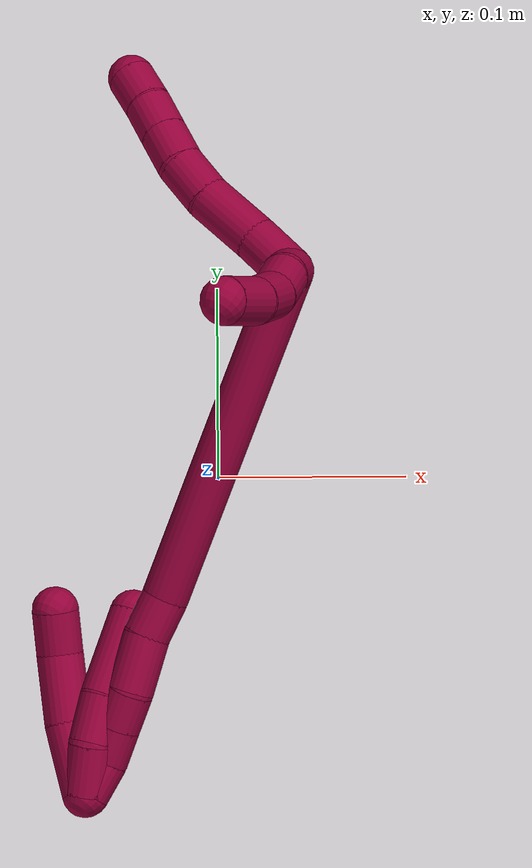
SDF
<sdf version="1.7">
 <world name="default">
  <model name="photoneo_s_sensor">
   <static>1</static>
   <pose>0 0 2 1.57079 1.57079 3.14159</pose>
   <link name="link">
    <inertial><mass>0.1</mass></inertial>
    <sensor name="sensor" type="depth">
     <update_rate>30</update_rate>
     <camera>
      <horizontal_fov>1.22</horizontal_fov>
      <image><width>1920</width><height>1200</height><format>B8G8R8</format></image>
      <clip><near>0.1</near><far>4</far></clip>
      <depth_camera><output>points</output></depth_camera>
     </camera>
     <plugin name="camera_plugin" filename="libgazebo_ros_depth_camera.so">
      <baseline>0.2</baseline>
      <alwaysOn>1</alwaysOn>
      <updateRate>0.0</updateRate>
      <cameraName>camera_ir</cameraName>
      <imageTopicName>/camera/color/image_raw</imageTopicName>
      <cameraInfoTopicName>/camera/color/camera_info</cameraInfoTopicName>
      <depthImageTopicName>/camera/depth/image_raw</depthImageTopicName>
      <depthImageCameraInfoTopicName>/camera/depth/camera_info</depthImageCameraInfoTopicName>
      <pointCloudTopicName>/camera/depth/points</pointCloudTopicName>
      <frameName>fr_optical</frameName>
      <pointCloudCutoff>0.1</pointCloudCutoff>
      <pointCloudCutoffMax>2.0</pointCloudCutoffMax>
      <distortionK1>0</distortionK1>
      <distortionK2>0</distortionK2>
      <distortionK3>0</distortionK3>
      <distortionT1>0</distortionT1>
      <distortionT2>0</distortionT2>
      <CxPrime>0</CxPrime>
      <Cx>0</Cx>
      <Cy>0</Cy>
      <focalLength>0</focalLength>
      <hackBaseline>0</hackBaseline>
     </plugin>
    </sensor>
   </link>
  </model>
  <model name="bin">
   <static>1</static>
   <link name="bottom">
    <collision name="collision-bottom">
     <pose>0 0 -0.01 0 -0 0</pose>
     <geometry><box><size>0.8 0.6 0.02</size></box></geometry>
     <surface>
      <friction><ode><mu>100</mu><mu2>100</mu2></ode></friction>
      <contact><collide_bitmask>65535</collide_bitmask></contact>
     </surface>
    </collision>
   </link>
   <link name="west_wall">
    <collision name="collision-west_wall">
     <pose>-0.41 0 0.1 0 -0 0</pose>
     <geometry><box><size>0.02 0.6 0.2</size></box></geometry>
     <surface>
      <friction><ode><mu>100</mu><mu2>100</mu2></ode></friction>
      <contact><collide_bitmask>65535</collide_bitmask></contact>
     </surface>
    </collision>
   </link>
   <link name="east_wall">
    <collision name="collision-east_wall">
     <pose>0.41 0 0.1 0 -0 0</pose>
     <geometry><box><size>0.02 0.6 0.2</size></box></geometry>
     <surface>
      <friction><ode><mu>100</mu><mu2>100</mu2></ode></friction>
      <contact><collide_bitmask>65535</collide_bitmask></contact>
     </surface>
    </collision>
   </link>
   <link name="south_wall">
    <collision name="collision-south_wall">
     <pose>0 -0.31 0.1 0 -0 0</pose>
     <geometry><box><size>0.8 0.02 0.2</size></box></geometry>
     <surface>
      <friction><ode><mu>100</mu><mu2>100</mu2></ode></friction>
      <contact><collide_bitmask>65535</collide_bitmask></contact>
     </surface>
    </collision>
   </link>
   <link name="north_wall">
    <collision name="collision-north_wall">
     <pose>0 0.31 0.1 0 -0 0</pose>
     <geometry><box><size>0.8 0.02 0.2</size></box></geometry>
     <surface>
      <friction><ode><mu>100</mu><mu2>100</mu2></ode></friction>
      <contact><collide_bitmask>65535</collide_bitmask></contact>
     </surface>
    </collision>
   </link>
  </model>
  <model name="8">
   <static>0</static>
   <link name="8">
    <collision name="collision-cylinder-e_1_2_8">
     <pose>-0.000468 0.012785 -0.004878 -1.93528 -0.034212 0.049666</pose>
     <geometry><cylinder><radius>0.0125</radius><length>0.027383</length></cylinder></geometry>
     <surface>
      <friction><ode><mu>1.16</mu><mu2>1.16</mu2><slip1>0</slip1><slip2>0</slip2></ode></friction>
      <contact><ode><kp>1e+06</kp><kd>1</kd><max_vel>0</max_vel><min_depth>0.001</min_depth></ode></contact>
     </surface>
    </collision>
    <visual name="visual-cylinder-e_1_2_8">
     <pose>-0.000468 0.012785 -0.004878 -1.93528 -0.034212 0.049666</pose>
     <geometry><cylinder><radius>0.0125</radius><length>0.027383</length></cylinder></geometry>
     <material><ambient>0.584314 0 0.227451 1</ambient></material>
    </visual>
    <collision name="collision-cylinder-e_2_8_9">
     <pose>0.000155 0.042651 -0.014839 -1.86006 0.061153 -0.081984</pose>
     <geometry><cylinder><radius>0.0125</radius><length>0.035711</length></cylinder></geometry>
     <surface>
      <friction><ode><mu>1.16</mu><mu2>1.16</mu2><slip1>0</slip1><slip2>0</slip2></ode></friction>
      <contact><ode><kp>1e+06</kp><kd>1</kd><max_vel>0</max_vel><min_depth>0.001</min_depth></ode></contact>
     </surface>
    </collision>
    <visual name="visual-cylinder-e_2_8_9">
     <pose>0.000155 0.042651 -0.014839 -1.86006 0.061153 -0.081984</pose>
     <geometry><cylinder><radius>0.0125</radius><length>0.035711</length></cylinder></geometry>
     <material><ambient>0.584314 0 0.227451 1</ambient></material>
    </visual>
    <collision name="collision-cylinder-e_3_9_10">
     <pose>0.002298 0.070681 -0.025123 -2.0142 0.086561 -0.136812</pose>
     <geometry><cylinder><radius>0.0125</radius><length>0.024332</length></cylinder></geometry>
     <surface>
      <friction><ode><mu>1.16</mu><mu2>1.16</mu2><slip1>0</slip1><slip2>0</slip2></ode></friction>
      <contact><ode><kp>1e+06</kp><kd>1</kd><max_vel>0</max_vel><min_depth>0.001</min_depth></ode></contact>
     </surface>
    </collision>
    <visual name="visual-cylinder-e_3_9_10">
     <pose>0.002298 0.070681 -0.025123 -2.0142 0.086561 -0.136812</pose>
     <geometry><cylinder><radius>0.0125</radius><length>0.024332</length></cylinder></geometry>
     <material><ambient>0.584314 0 0.227451 1</ambient></material>
    </visual>
    <collision name="collision-cylinder-e_4_10_11">
     <pose>0.00348 0.090267 -0.036682 -2.20539 0.01221 -0.024149</pose>
     <geometry><cylinder><radius>0.0125</radius><length>0.021454</length></cylinder></geometry>
     <surface>
      <friction><ode><mu>1.16</mu><mu2>1.16</mu2><slip1>0</slip1><slip2>0</slip2></ode></friction>
      <contact><ode><kp>1e+06</kp><kd>1</kd><max_vel>0</max_vel><min_depth>0.001</min_depth></ode></contact>
     </surface>
    </collision>
    <visual name="visual-cylinder-e_4_10_11">
     <pose>0.00348 0.090267 -0.036682 -2.20539 0.01221 -0.024149</pose>
     <geometry><cylinder><radius>0.0125</radius><length>0.021454</length></cylinder></geometry>
     <material><ambient>0.584314 0 0.227451 1</ambient></material>
    </visual>
    <collision name="collision-cylinder-e_5_11_12">
     <pose>0.003805 0.107047 -0.04911 -2.21133 0.019045 -0.037947</pose>
     <geometry><cylinder><radius>0.0125</radius><length>0.020314</length></cylinder></geometry>
     <surface>
      <friction><ode><mu>1.16</mu><mu2>1.16</mu2><slip1>0</slip1><slip2>0</slip2></ode></friction>
      <contact><ode><kp>1e+06</kp><kd>1</kd><max_vel>0</max_vel><min_depth>0.001</min_depth></ode></contact>
     </surface>
    </collision>
    <visual name="visual-cylinder-e_5_11_12">
     <pose>0.003805 0.107047 -0.04911 -2.21133 0.019045 -0.037947</pose>
     <geometry><cylinder><radius>0.0125</radius><length>0.020314</length></cylinder></geometry>
     <material><ambient>0.584314 0 0.227451 1</ambient></material>
    </visual>
    <collision name="collision-cylinder-e_6_12_6">
     <pose>0.003253 0.123735 -0.061065 -2.17398 -0.071668 0.136237</pose>
     <geometry><cylinder><radius>0.0125</radius><length>0.020806</length></cylinder></geometry>
     <surface>
      <friction><ode><mu>1.16</mu><mu2>1.16</mu2><slip1>0</slip1><slip2>0</slip2></ode></friction>
      <contact><ode><kp>1e+06</kp><kd>1</kd><max_vel>0</max_vel><min_depth>0.001</min_depth></ode></contact>
     </surface>
    </collision>
    <visual name="visual-cylinder-e_6_12_6">
     <pose>0.003253 0.123735 -0.061065 -2.17398 -0.071668 0.136237</pose>
     <geometry><cylinder><radius>0.0125</radius><length>0.020806</length></cylinder></geometry>
     <material><ambient>0.584314 0 0.227451 1</ambient></material>
    </visual>
    <collision name="collision-cylinder-e_1_2_13">
     <pose>0.008085 -0.002313 0.006305 0.351572 0.877668 0.166349</pose>
     <geometry><cylinder><radius>0.0125</radius><length>0.02102</length></cylinder></geometry>
     <surface>
      <friction><ode><mu>1.16</mu><mu2>1.16</mu2><slip1>0</slip1><slip2>0</slip2></ode></friction>
      <contact><ode><kp>1e+06</kp><kd>1</kd><max_vel>0</max_vel><min_depth>0.001</min_depth></ode></contact>
     </surface>
    </collision>
    <visual name="visual-cylinder-e_1_2_13">
     <pose>0.008085 -0.002313 0.006305 0.351572 0.877668 0.166349</pose>
     <geometry><cylinder><radius>0.0125</radius><length>0.02102</length></cylinder></geometry>
     <material><ambient>0.584314 0 0.227451 1</ambient></material>
    </visual>
    <collision name="collision-cylinder-e_2_13_14">
     <pose>0.023108 -0.007142 0.022256 0.255211 0.608016 0.080462</pose>
     <geometry><cylinder><radius>0.0125</radius><length>0.024293</length></cylinder></geometry>
     <surface>
      <friction><ode><mu>1.16</mu><mu2>1.16</mu2><slip1>0</slip1><slip2>0</slip2></ode></friction>
      <contact><ode><kp>1e+06</kp><kd>1</kd><max_vel>0</max_vel><min_depth>0.001</min_depth></ode></contact>
     </surface>
    </collision>
    <visual name="visual-cylinder-e_2_13_14">
     <pose>0.023108 -0.007142 0.022256 0.255211 0.608016 0.080462</pose>
     <geometry><cylinder><radius>0.0125</radius><length>0.024293</length></cylinder></geometry>
     <material><ambient>0.584314 0 0.227451 1</ambient></material>
    </visual>
    <collision name="collision-cylinder-e_3_14_15">
     <pose>0.038995 -0.009808 0.039909 0.018693 0.840827 0.008357</pose>
     <geometry><cylinder><radius>0.0125</radius><length>0.024016</length></cylinder></geometry>
     <surface>
      <friction><ode><mu>1.16</mu><mu2>1.16</mu2><slip1>0</slip1><slip2>0</slip2></ode></friction>
      <contact><ode><kp>1e+06</kp><kd>1</kd><max_vel>0</max_vel><min_depth>0.001</min_depth></ode></contact>
     </surface>
    </collision>
    <visual name="visual-cylinder-e_3_14_15">
     <pose>0.038995 -0.009808 0.039909 0.018693 0.840827 0.008357</pose>
     <geometry><cylinder><radius>0.0125</radius><length>0.024016</length></cylinder></geometry>
     <material><ambient>0.584314 0 0.227451 1</ambient></material>
    </visual>
    <collision name="collision-cylinder-e_4_15_5">
     <pose>0.059899 -0.007521 0.057205 -0.256524 0.894039 -0.123495</pose>
     <geometry><cylinder><radius>0.0125</radius><length>0.030671</length></cylinder></geometry>
     <surface>
      <friction><ode><mu>1.16</mu><mu2>1.16</mu2><slip1>0</slip1><slip2>0</slip2></ode></friction>
      <contact><ode><kp>1e+06</kp><kd>1</kd><max_vel>0</max_vel><min_depth>0.001</min_depth></ode></contact>
     </surface>
    </collision>
    <visual name="visual-cylinder-e_4_15_5">
     <pose>0.059899 -0.007521 0.057205 -0.256524 0.894039 -0.123495</pose>
     <geometry><cylinder><radius>0.0125</radius><length>0.030671</length></cylinder></geometry>
     <material><ambient>0.584314 0 0.227451 1</ambient></material>
    </visual>
    <collision name="collision-cylinder-e_1_2_16">
     <pose>-0.057709 0.002044 0.073375 -0.027847 -0.666261 0.009636</pose>
     <geometry><cylinder><radius>0.0125</radius><length>0.186744</length></cylinder></geometry>
     <surface>
      <friction><ode><mu>1.16</mu><mu2>1.16</mu2><slip1>0</slip1><slip2>0</slip2></ode></friction>
      <contact><ode><kp>1e+06</kp><kd>1</kd><max_vel>0</max_vel><min_depth>0.001</min_depth></ode></contact>
     </surface>
    </collision>
    <visual name="visual-cylinder-e_1_2_16">
     <pose>-0.057709 0.002044 0.073375 -0.027847 -0.666261 0.009636</pose>
     <geometry><cylinder><radius>0.0125</radius><length>0.186744</length></cylinder></geometry>
     <material><ambient>0.584314 0 0.227451 1</ambient></material>
    </visual>
    <collision name="collision-cylinder-e_2_16_17">
     <pose>-0.12068 0.004672 0.156692 -0.058695 -0.48615 0.014559</pose>
     <geometry><cylinder><radius>0.0125</radius><length>0.022528</length></cylinder></geometry>
     <surface>
      <friction><ode><mu>1.16</mu><mu2>1.16</mu2><slip1>0</slip1><slip2>0</slip2></ode></friction>
      <contact><ode><kp>1e+06</kp><kd>1</kd><max_vel>0</max_vel><min_depth>0.001</min_depth></ode></contact>
     </surface>
    </collision>
    <visual name="visual-cylinder-e_2_16_17">
     <pose>-0.12068 0.004672 0.156692 -0.058695 -0.48615 0.014559</pose>
     <geometry><cylinder><radius>0.0125</radius><length>0.022528</length></cylinder></geometry>
     <material><ambient>0.584314 0 0.227451 1</ambient></material>
    </visual>
    <collision name="collision-cylinder-e_3_17_18">
     <pose>-0.13297 0.003455 0.180133 0.132643 -0.476309 -0.032245</pose>
     <geometry><cylinder><radius>0.0125</radius><length>0.030649</length></cylinder></geometry>
     <surface>
      <friction><ode><mu>1.16</mu><mu2>1.16</mu2><slip1>0</slip1><slip2>0</slip2></ode></friction>
      <contact><ode><kp>1e+06</kp><kd>1</kd><max_vel>0</max_vel><min_depth>0.001</min_depth></ode></contact>
     </surface>
    </collision>
    <visual name="visual-cylinder-e_3_17_18">
     <pose>-0.13297 0.003455 0.180133 0.132643 -0.476309 -0.032245</pose>
     <geometry><cylinder><radius>0.0125</radius><length>0.030649</length></cylinder></geometry>
     <material><ambient>0.584314 0 0.227451 1</ambient></material>
    </visual>
    <collision name="collision-cylinder-e_4_18_19">
     <pose>-0.145854 0.001677 0.201757 -0.002906 -0.624683 0.000938</pose>
     <geometry><cylinder><radius>0.0125</radius><length>0.020033</length></cylinder></geometry>
     <surface>
      <friction><ode><mu>1.16</mu><mu2>1.16</mu2><slip1>0</slip1><slip2>0</slip2></ode></friction>
      <contact><ode><kp>1e+06</kp><kd>1</kd><max_vel>0</max_vel><min_depth>0.001</min_depth></ode></contact>
     </surface>
    </collision>
    <visual name="visual-cylinder-e_4_18_19">
     <pose>-0.145854 0.001677 0.201757 -0.002906 -0.624683 0.000938</pose>
     <geometry><cylinder><radius>0.0125</radius><length>0.020033</length></cylinder></geometry>
     <material><ambient>0.584314 0 0.227451 1</ambient></material>
    </visual>
    <collision name="collision-cylinder-e_5_19_20">
     <pose>-0.157536 0.001598 0.218016 0.012616 -0.621349 -0.004051</pose>
     <geometry><cylinder><radius>0.0125</radius><length>0.020009</length></cylinder></geometry>
     <surface>
      <friction><ode><mu>1.16</mu><mu2>1.16</mu2><slip1>0</slip1><slip2>0</slip2></ode></friction>
      <contact><ode><kp>1e+06</kp><kd>1</kd><max_vel>0</max_vel><min_depth>0.001</min_depth></ode></contact>
     </surface>
    </collision>
    <visual name="visual-cylinder-e_5_19_20">
     <pose>-0.157536 0.001598 0.218016 0.012616 -0.621349 -0.004051</pose>
     <geometry><cylinder><radius>0.0125</radius><length>0.020009</length></cylinder></geometry>
     <material><ambient>0.584314 0 0.227451 1</ambient></material>
    </visual>
    <collision name="collision-cylinder-e_6_20_1">
     <pose>-0.166417 0.002141 0.235669 -0.067645 -0.310034 0.010575</pose>
     <geometry><cylinder><radius>0.0125</radius><length>0.020036</length></cylinder></geometry>
     <surface>
      <friction><ode><mu>1.16</mu><mu2>1.16</mu2><slip1>0</slip1><slip2>0</slip2></ode></friction>
      <contact><ode><kp>1e+06</kp><kd>1</kd><max_vel>0</max_vel><min_depth>0.001</min_depth></ode></contact>
     </surface>
    </collision>
    <visual name="visual-cylinder-e_6_20_1">
     <pose>-0.166417 0.002141 0.235669 -0.067645 -0.310034 0.010575</pose>
     <geometry><cylinder><radius>0.0125</radius><length>0.020036</length></cylinder></geometry>
     <material><ambient>0.584314 0 0.227451 1</ambient></material>
    </visual>
    <collision name="collision-cylinder-e_1_1_21">
     <pose>-0.164516 0.015262 0.23159 -2.39912 0.262416 -0.653672</pose>
     <geometry><cylinder><radius>0.0125</radius><length>0.038216</length></cylinder></geometry>
     <surface>
      <friction><ode><mu>1.16</mu><mu2>1.16</mu2><slip1>0</slip1><slip2>0</slip2></ode></friction>
      <contact><ode><kp>1e+06</kp><kd>1</kd><max_vel>0</max_vel><min_depth>0.001</min_depth></ode></contact>
     </surface>
    </collision>
    <visual name="visual-cylinder-e_1_1_21">
     <pose>-0.164516 0.015262 0.23159 -2.39912 0.262416 -0.653672</pose>
     <geometry><cylinder><radius>0.0125</radius><length>0.038216</length></cylinder></geometry>
     <material><ambient>0.584314 0 0.227451 1</ambient></material>
    </visual>
    <collision name="collision-cylinder-e_2_21_22">
     <pose>-0.152117 0.037645 0.203636 -2.53765 0.403265 -1.16147</pose>
     <geometry><cylinder><radius>0.0125</radius><length>0.037929</length></cylinder></geometry>
     <surface>
      <friction><ode><mu>1.16</mu><mu2>1.16</mu2><slip1>0</slip1><slip2>0</slip2></ode></friction>
      <contact><ode><kp>1e+06</kp><kd>1</kd><max_vel>0</max_vel><min_depth>0.001</min_depth></ode></contact>
     </surface>
    </collision>
    <visual name="visual-cylinder-e_2_21_22">
     <pose>-0.152117 0.037645 0.203636 -2.53765 0.403265 -1.16147</pose>
     <geometry><cylinder><radius>0.0125</radius><length>0.037929</length></cylinder></geometry>
     <material><ambient>0.584314 0 0.227451 1</ambient></material>
    </visual>
    <collision name="collision-cylinder-e_3_22_4">
     <pose>-0.137165 0.052519 0.181456 -2.57575 0.681125 -1.7675</pose>
     <geometry><cylinder><radius>0.0125</radius><length>0.023855</length></cylinder></geometry>
     <surface>
      <friction><ode><mu>1.16</mu><mu2>1.16</mu2><slip1>0</slip1><slip2>0</slip2></ode></friction>
      <contact><ode><kp>1e+06</kp><kd>1</kd><max_vel>0</max_vel><min_depth>0.001</min_depth></ode></contact>
     </surface>
    </collision>
    <visual name="visual-cylinder-e_3_22_4">
     <pose>-0.137165 0.052519 0.181456 -2.57575 0.681125 -1.7675</pose>
     <geometry><cylinder><radius>0.0125</radius><length>0.023855</length></cylinder></geometry>
     <material><ambient>0.584314 0 0.227451 1</ambient></material>
    </visual>
    <collision name="collision-cylinder-e_1_1_23">
     <pose>-0.161671 0.005949 0.23478 -2.84649 0.622201 -2.27562</pose>
     <geometry><cylinder><radius>0.0125</radius><length>0.026772</length></cylinder></geometry>
     <surface>
      <friction><ode><mu>1.16</mu><mu2>1.16</mu2><slip1>0</slip1><slip2>0</slip2></ode></friction>
      <contact><ode><kp>1e+06</kp><kd>1</kd><max_vel>0</max_vel><min_depth>0.001</min_depth></ode></contact>
     </surface>
    </collision>
    <visual name="visual-cylinder-e_1_1_23">
     <pose>-0.161671 0.005949 0.23478 -2.84649 0.622201 -2.27562</pose>
     <geometry><cylinder><radius>0.0125</radius><length>0.026772</length></cylinder></geometry>
     <material><ambient>0.584314 0 0.227451 1</ambient></material>
    </visual>
    <collision name="collision-cylinder-e_2_23_24">
     <pose>-0.149441 0.011719 0.21252 -2.9251 0.349905 -2.03915</pose>
     <geometry><cylinder><radius>0.0125</radius><length>0.025839</length></cylinder></geometry>
     <surface>
      <friction><ode><mu>1.16</mu><mu2>1.16</mu2><slip1>0</slip1><slip2>0</slip2></ode></friction>
      <contact><ode><kp>1e+06</kp><kd>1</kd><max_vel>0</max_vel><min_depth>0.001</min_depth></ode></contact>
     </surface>
    </collision>
    <visual name="visual-cylinder-e_2_23_24">
     <pose>-0.149441 0.011719 0.21252 -2.9251 0.349905 -2.03915</pose>
     <geometry><cylinder><radius>0.0125</radius><length>0.025839</length></cylinder></geometry>
     <material><ambient>0.584314 0 0.227451 1</ambient></material>
    </visual>
    <collision name="collision-cylinder-e_3_24_3">
     <pose>-0.139246 0.017573 0.177914 -2.99987 0.245838 -2.0986</pose>
     <geometry><cylinder><radius>0.0125</radius><length>0.04739</length></cylinder></geometry>
     <surface>
      <friction><ode><mu>1.16</mu><mu2>1.16</mu2><slip1>0</slip1><slip2>0</slip2></ode></friction>
      <contact><ode><kp>1e+06</kp><kd>1</kd><max_vel>0</max_vel><min_depth>0.001</min_depth></ode></contact>
     </surface>
    </collision>
    <visual name="visual-cylinder-e_3_24_3">
     <pose>-0.139246 0.017573 0.177914 -2.99987 0.245838 -2.0986</pose>
     <geometry><cylinder><radius>0.0125</radius><length>0.04739</length></cylinder></geometry>
     <material><ambient>0.584314 0 0.227451 1</ambient></material>
    </visual>
    <collision name="collision-sphere-3">
     <pose>-0.133479 0.020819 0.155162 0 -0 0</pose>
     <geometry><sphere><radius>0.0125</radius></sphere></geometry>
     <surface>
      <friction><ode><mu>1.16</mu><mu2>1.16</mu2><slip1>0</slip1><slip2>0</slip2></ode></friction>
      <contact><ode><kp>1e+06</kp><kd>1</kd><max_vel>0</max_vel><min_depth>0.001</min_depth></ode></contact>
     </surface>
    </collision>
    <visual name="visual-sphere-3">
     <pose>-0.133479 0.020819 0.155162 0 -0 0</pose>
     <geometry><sphere><radius>0.0125</radius></sphere></geometry>
     <material><ambient>0.584314 0 0.227451 1</ambient></material>
    </visual>
    <collision name="collision-sphere-24">
     <pose>-0.145012 0.014326 0.200666 0 -0 0</pose>
     <geometry><sphere><radius>0.0125</radius></sphere></geometry>
     <surface>
      <friction><ode><mu>1.16</mu><mu2>1.16</mu2><slip1>0</slip1><slip2>0</slip2></ode></friction>
      <contact><ode><kp>1e+06</kp><kd>1</kd><max_vel>0</max_vel><min_depth>0.001</min_depth></ode></contact>
     </surface>
    </collision>
    <visual name="visual-sphere-24">
     <pose>-0.145012 0.014326 0.200666 0 -0 0</pose>
     <geometry><sphere><radius>0.0125</radius></sphere></geometry>
     <material><ambient>0.584314 0 0.227451 1</ambient></material>
    </visual>
    <collision name="collision-sphere-23">
     <pose>-0.15387 0.009112 0.224373 0 -0 0</pose>
     <geometry><sphere><radius>0.0125</radius></sphere></geometry>
     <surface>
      <friction><ode><mu>1.16</mu><mu2>1.16</mu2><slip1>0</slip1><slip2>0</slip2></ode></friction>
      <contact><ode><kp>1e+06</kp><kd>1</kd><max_vel>0</max_vel><min_depth>0.001</min_depth></ode></contact>
     </surface>
    </collision>
    <visual name="visual-sphere-23">
     <pose>-0.15387 0.009112 0.224373 0 -0 0</pose>
     <geometry><sphere><radius>0.0125</radius></sphere></geometry>
     <material><ambient>0.584314 0 0.227451 1</ambient></material>
    </visual>
    <collision name="collision-sphere-4">
     <pose>-0.129654 0.057487 0.173635 0 -0 0</pose>
     <geometry><sphere><radius>0.0125</radius></sphere></geometry>
     <surface>
      <friction><ode><mu>1.16</mu><mu2>1.16</mu2><slip1>0</slip1><slip2>0</slip2></ode></friction>
      <contact><ode><kp>1e+06</kp><kd>1</kd><max_vel>0</max_vel><min_depth>0.001</min_depth></ode></contact>
     </surface>
    </collision>
    <visual name="visual-sphere-4">
     <pose>-0.129654 0.057487 0.173635 0 -0 0</pose>
     <geometry><sphere><radius>0.0125</radius></sphere></geometry>
     <material><ambient>0.584314 0 0.227451 1</ambient></material>
    </visual>
    <collision name="collision-sphere-22">
     <pose>-0.144675 0.047551 0.189278 0 -0 0</pose>
     <geometry><sphere><radius>0.0125</radius></sphere></geometry>
     <surface>
      <friction><ode><mu>1.16</mu><mu2>1.16</mu2><slip1>0</slip1><slip2>0</slip2></ode></friction>
      <contact><ode><kp>1e+06</kp><kd>1</kd><max_vel>0</max_vel><min_depth>0.001</min_depth></ode></contact>
     </surface>
    </collision>
    <visual name="visual-sphere-22">
     <pose>-0.144675 0.047551 0.189278 0 -0 0</pose>
     <geometry><sphere><radius>0.0125</radius></sphere></geometry>
     <material><ambient>0.584314 0 0.227451 1</ambient></material>
    </visual>
    <collision name="collision-sphere-21">
     <pose>-0.159559 0.02774 0.217993 0 -0 0</pose>
     <geometry><sphere><radius>0.0125</radius></sphere></geometry>
     <surface>
      <friction><ode><mu>1.16</mu><mu2>1.16</mu2><slip1>0</slip1><slip2>0</slip2></ode></friction>
      <contact><ode><kp>1e+06</kp><kd>1</kd><max_vel>0</max_vel><min_depth>0.001</min_depth></ode></contact>
     </surface>
    </collision>
    <visual name="visual-sphere-21">
     <pose>-0.159559 0.02774 0.217993 0 -0 0</pose>
     <geometry><sphere><radius>0.0125</radius></sphere></geometry>
     <material><ambient>0.584314 0 0.227451 1</ambient></material>
    </visual>
    <collision name="collision-sphere-1">
     <pose>-0.169473 0.002785 0.245187 0 -0 0</pose>
     <geometry><sphere><radius>0.0125</radius></sphere></geometry>
     <surface>
      <friction><ode><mu>1.16</mu><mu2>1.16</mu2><slip1>0</slip1><slip2>0</slip2></ode></friction>
      <contact><ode><kp>1e+06</kp><kd>1</kd><max_vel>0</max_vel><min_depth>0.001</min_depth></ode></contact>
     </surface>
    </collision>
    <visual name="visual-sphere-1">
     <pose>-0.169473 0.002785 0.245187 0 -0 0</pose>
     <geometry><sphere><radius>0.0125</radius></sphere></geometry>
     <material><ambient>0.584314 0 0.227451 1</ambient></material>
    </visual>
    <collision name="collision-sphere-12">
     <pose>0.003998 0.11519 -0.055179 0 -0 0</pose>
     <geometry><sphere><radius>0.0125</radius></sphere></geometry>
     <surface>
      <friction><ode><mu>1.16</mu><mu2>1.16</mu2><slip1>0</slip1><slip2>0</slip2></ode></friction>
      <contact><ode><kp>1e+06</kp><kd>1</kd><max_vel>0</max_vel><min_depth>0.001</min_depth></ode></contact>
     </surface>
    </collision>
    <visual name="visual-sphere-12">
     <pose>0.003998 0.11519 -0.055179 0 -0 0</pose>
     <geometry><sphere><radius>0.0125</radius></sphere></geometry>
     <material><ambient>0.584314 0 0.227451 1</ambient></material>
    </visual>
    <collision name="collision-sphere-11">
     <pose>0.003611 0.098905 -0.043041 0 -0 0</pose>
     <geometry><sphere><radius>0.0125</radius></sphere></geometry>
     <surface>
      <friction><ode><mu>1.16</mu><mu2>1.16</mu2><slip1>0</slip1><slip2>0</slip2></ode></friction>
      <contact><ode><kp>1e+06</kp><kd>1</kd><max_vel>0</max_vel><min_depth>0.001</min_depth></ode></contact>
     </surface>
    </collision>
    <visual name="visual-sphere-11">
     <pose>0.003611 0.098905 -0.043041 0 -0 0</pose>
     <geometry><sphere><radius>0.0125</radius></sphere></geometry>
     <material><ambient>0.584314 0 0.227451 1</ambient></material>
    </visual>
    <collision name="collision-sphere-10">
     <pose>0.003349 0.081629 -0.030323 0 -0 0</pose>
     <geometry><sphere><radius>0.0125</radius></sphere></geometry>
     <surface>
      <friction><ode><mu>1.16</mu><mu2>1.16</mu2><slip1>0</slip1><slip2>0</slip2></ode></friction>
      <contact><ode><kp>1e+06</kp><kd>1</kd><max_vel>0</max_vel><min_depth>0.001</min_depth></ode></contact>
     </surface>
    </collision>
    <visual name="visual-sphere-10">
     <pose>0.003349 0.081629 -0.030323 0 -0 0</pose>
     <geometry><sphere><radius>0.0125</radius></sphere></geometry>
     <material><ambient>0.584314 0 0.227451 1</ambient></material>
    </visual>
    <collision name="collision-sphere-9">
     <pose>0.001246 0.059732 -0.019923 0 -0 0</pose>
     <geometry><sphere><radius>0.0125</radius></sphere></geometry>
     <surface>
      <friction><ode><mu>1.16</mu><mu2>1.16</mu2><slip1>0</slip1><slip2>0</slip2></ode></friction>
      <contact><ode><kp>1e+06</kp><kd>1</kd><max_vel>0</max_vel><min_depth>0.001</min_depth></ode></contact>
     </surface>
    </collision>
    <visual name="visual-sphere-9">
     <pose>0.001246 0.059732 -0.019923 0 -0 0</pose>
     <geometry><sphere><radius>0.0125</radius></sphere></geometry>
     <material><ambient>0.584314 0 0.227451 1</ambient></material>
    </visual>
    <collision name="collision-sphere-2">
     <geometry><sphere><radius>0.0125</radius></sphere></geometry>
     <surface>
      <friction><ode><mu>1.16</mu><mu2>1.16</mu2><slip1>0</slip1><slip2>0</slip2></ode></friction>
      <contact><ode><kp>1e+06</kp><kd>1</kd><max_vel>0</max_vel><min_depth>0.001</min_depth></ode></contact>
     </surface>
    </collision>
    <visual name="visual-sphere-2">
     <geometry><sphere><radius>0.0125</radius></sphere></geometry>
     <material><ambient>0.584314 0 0.227451 1</ambient></material>
    </visual>
    <collision name="collision-sphere-19">
     <pose>-0.151712 0.001701 0.209882 0 -0 0</pose>
     <geometry><sphere><radius>0.0125</radius></sphere></geometry>
     <surface>
      <friction><ode><mu>1.16</mu><mu2>1.16</mu2><slip1>0</slip1><slip2>0</slip2></ode></friction>
      <contact><ode><kp>1e+06</kp><kd>1</kd><max_vel>0</max_vel><min_depth>0.001</min_depth></ode></contact>
     </surface>
    </collision>
    <visual name="visual-sphere-19">
     <pose>-0.151712 0.001701 0.209882 0 -0 0</pose>
     <geometry><sphere><radius>0.0125</radius></sphere></geometry>
     <material><ambient>0.584314 0 0.227451 1</ambient></material>
    </visual>
    <collision name="collision-sphere-8">
     <pose>-0.000937 0.025569 -0.009756 0 -0 0</pose>
     <geometry><sphere><radius>0.0125</radius></sphere></geometry>
     <surface>
      <friction><ode><mu>1.16</mu><mu2>1.16</mu2><slip1>0</slip1><slip2>0</slip2></ode></friction>
      <contact><ode><kp>1e+06</kp><kd>1</kd><max_vel>0</max_vel><min_depth>0.001</min_depth></ode></contact>
     </surface>
    </collision>
    <visual name="visual-sphere-8">
     <pose>-0.000937 0.025569 -0.009756 0 -0 0</pose>
     <geometry><sphere><radius>0.0125</radius></sphere></geometry>
     <material><ambient>0.584314 0 0.227451 1</ambient></material>
    </visual>
    <collision name="collision-sphere-6">
     <pose>0.002508 0.13228 -0.066951 0 -0 0</pose>
     <geometry><sphere><radius>0.0125</radius></sphere></geometry>
     <surface>
      <friction><ode><mu>1.16</mu><mu2>1.16</mu2><slip1>0</slip1><slip2>0</slip2></ode></friction>
      <contact><ode><kp>1e+06</kp><kd>1</kd><max_vel>0</max_vel><min_depth>0.001</min_depth></ode></contact>
     </surface>
    </collision>
    <visual name="visual-sphere-6">
     <pose>0.002508 0.13228 -0.066951 0 -0 0</pose>
     <geometry><sphere><radius>0.0125</radius></sphere></geometry>
     <material><ambient>0.584314 0 0.227451 1</ambient></material>
    </visual>
    <collision name="collision-sphere-13">
     <pose>0.01617 -0.004625 0.012609 0 -0 0</pose>
     <geometry><sphere><radius>0.0125</radius></sphere></geometry>
     <surface>
      <friction><ode><mu>1.16</mu><mu2>1.16</mu2><slip1>0</slip1><slip2>0</slip2></ode></friction>
      <contact><ode><kp>1e+06</kp><kd>1</kd><max_vel>0</max_vel><min_depth>0.001</min_depth></ode></contact>
     </surface>
    </collision>
    <visual name="visual-sphere-13">
     <pose>0.01617 -0.004625 0.012609 0 -0 0</pose>
     <geometry><sphere><radius>0.0125</radius></sphere></geometry>
     <material><ambient>0.584314 0 0.227451 1</ambient></material>
    </visual>
    <collision name="collision-sphere-14">
     <pose>0.030047 -0.009659 0.031902 0 -0 0</pose>
     <geometry><sphere><radius>0.0125</radius></sphere></geometry>
     <surface>
      <friction><ode><mu>1.16</mu><mu2>1.16</mu2><slip1>0</slip1><slip2>0</slip2></ode></friction>
      <contact><ode><kp>1e+06</kp><kd>1</kd><max_vel>0</max_vel><min_depth>0.001</min_depth></ode></contact>
     </surface>
    </collision>
    <visual name="visual-sphere-14">
     <pose>0.030047 -0.009659 0.031902 0 -0 0</pose>
     <geometry><sphere><radius>0.0125</radius></sphere></geometry>
     <material><ambient>0.584314 0 0.227451 1</ambient></material>
    </visual>
    <collision name="collision-sphere-15">
     <pose>0.047944 -0.009958 0.047915 0 -0 0</pose>
     <geometry><sphere><radius>0.0125</radius></sphere></geometry>
     <surface>
      <friction><ode><mu>1.16</mu><mu2>1.16</mu2><slip1>0</slip1><slip2>0</slip2></ode></friction>
      <contact><ode><kp>1e+06</kp><kd>1</kd><max_vel>0</max_vel><min_depth>0.001</min_depth></ode></contact>
     </surface>
    </collision>
    <visual name="visual-sphere-15">
     <pose>0.047944 -0.009958 0.047915 0 -0 0</pose>
     <geometry><sphere><radius>0.0125</radius></sphere></geometry>
     <material><ambient>0.584314 0 0.227451 1</ambient></material>
    </visual>
    <collision name="collision-sphere-5">
     <pose>0.071855 -0.005085 0.066494 0 -0 0</pose>
     <geometry><sphere><radius>0.0125</radius></sphere></geometry>
     <surface>
      <friction><ode><mu>1.16</mu><mu2>1.16</mu2><slip1>0</slip1><slip2>0</slip2></ode></friction>
      <contact><ode><kp>1e+06</kp><kd>1</kd><max_vel>0</max_vel><min_depth>0.001</min_depth></ode></contact>
     </surface>
    </collision>
    <visual name="visual-sphere-5">
     <pose>0.071855 -0.005085 0.066494 0 -0 0</pose>
     <geometry><sphere><radius>0.0125</radius></sphere></geometry>
     <material><ambient>0.584314 0 0.227451 1</ambient></material>
    </visual>
    <collision name="collision-sphere-16">
     <pose>-0.115417 0.004088 0.14675 0 -0 0</pose>
     <geometry><sphere><radius>0.0125</radius></sphere></geometry>
     <surface>
      <friction><ode><mu>1.16</mu><mu2>1.16</mu2><slip1>0</slip1><slip2>0</slip2></ode></friction>
      <contact><ode><kp>1e+06</kp><kd>1</kd><max_vel>0</max_vel><min_depth>0.001</min_depth></ode></contact>
     </surface>
    </collision>
    <visual name="visual-sphere-16">
     <pose>-0.115417 0.004088 0.14675 0 -0 0</pose>
     <geometry><sphere><radius>0.0125</radius></sphere></geometry>
     <material><ambient>0.584314 0 0.227451 1</ambient></material>
    </visual>
    <collision name="collision-sphere-17">
     <pose>-0.125943 0.005256 0.166634 0 -0 0</pose>
     <geometry><sphere><radius>0.0125</radius></sphere></geometry>
     <surface>
      <friction><ode><mu>1.16</mu><mu2>1.16</mu2><slip1>0</slip1><slip2>0</slip2></ode></friction>
      <contact><ode><kp>1e+06</kp><kd>1</kd><max_vel>0</max_vel><min_depth>0.001</min_depth></ode></contact>
     </surface>
    </collision>
    <visual name="visual-sphere-17">
     <pose>-0.125943 0.005256 0.166634 0 -0 0</pose>
     <geometry><sphere><radius>0.0125</radius></sphere></geometry>
     <material><ambient>0.584314 0 0.227451 1</ambient></material>
    </visual>
    <collision name="collision-sphere-18">
     <pose>-0.139996 0.001654 0.193632 0 -0 0</pose>
     <geometry><sphere><radius>0.0125</radius></sphere></geometry>
     <surface>
      <friction><ode><mu>1.16</mu><mu2>1.16</mu2><slip1>0</slip1><slip2>0</slip2></ode></friction>
      <contact><ode><kp>1e+06</kp><kd>1</kd><max_vel>0</max_vel><min_depth>0.001</min_depth></ode></contact>
     </surface>
    </collision>
    <visual name="visual-sphere-18">
     <pose>-0.139996 0.001654 0.193632 0 -0 0</pose>
     <geometry><sphere><radius>0.0125</radius></sphere></geometry>
     <material><ambient>0.584314 0 0.227451 1</ambient></material>
    </visual>
    <collision name="collision-sphere-20">
     <pose>-0.16336 0.001496 0.22615 0 -0 0</pose>
     <geometry><sphere><radius>0.0125</radius></sphere></geometry>
     <surface>
      <friction><ode><mu>1.16</mu><mu2>1.16</mu2><slip1>0</slip1><slip2>0</slip2></ode></friction>
      <contact><ode><kp>1e+06</kp><kd>1</kd><max_vel>0</max_vel><min_depth>0.001</min_depth></ode></contact>
     </surface>
    </collision>
    <visual name="visual-sphere-20">
     <pose>-0.16336 0.001496 0.22615 0 -0 0</pose>
     <geometry><sphere><radius>0.0125</radius></sphere></geometry>
     <material><ambient>0.584314 0 0.227451 1</ambient></material>
    </visual>
    <inertial>
     <pose>-0.071098 0.0198 0.101395 0 -0 0</pose>
     <mass>0.75</mass>
     <inertia>
      <ixx>0.00044</ixx>
      <ixy>0</ixy>
      <ixz>0</ixz>
      <iyy>0.000566</iyy>
      <iyz>0</iyz>
      <izz>0.000298</izz>
     </inertia>
    </inertial>
   </link>
   <pose>0.037882 0.107036 0.076101 -0.645429 -1.04516 1.72624</pose>
  </model>
 </world>
</sdf>
